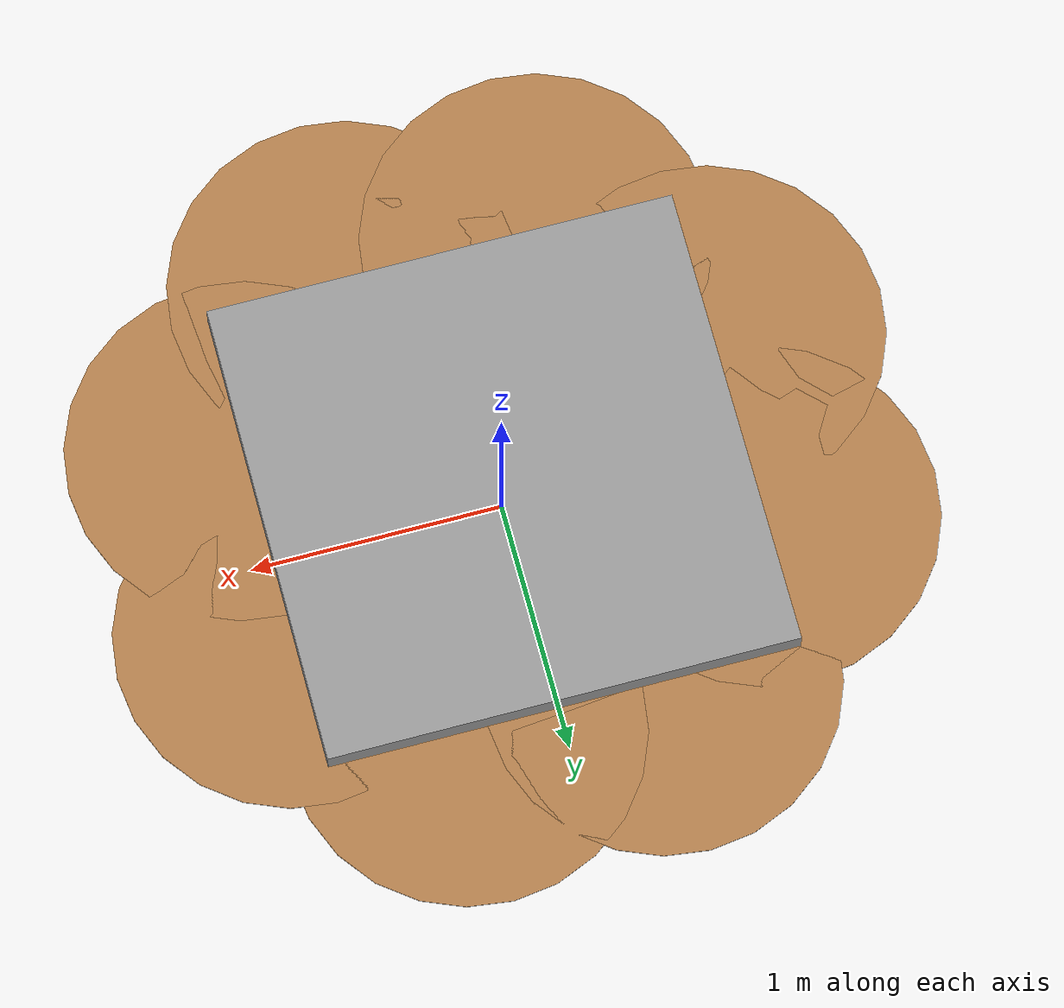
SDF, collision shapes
<sdf version='1.6'>
  <model name='DS030W'>
    <link name='base_link'>
      <pose frame=''>0 0 0 0 -0 0</pose>
      <inertial>
        <pose frame=''>0 0 0 0 -0 0</pose>
        <mass>28.784</mass>
        <inertia>
          <ixx>2.115</ixx>
          <ixy>0</ixy>
          <ixz>0</ixz>
          <iyy>2.074</iyy>
          <iyz>0</iyz>
          <izz>3.626</izz>
        </inertia>
      </inertial>
      <collision name='base_link_inertia_collision'>
        <pose frame=''>0 0 0 0 -0 0</pose>
        <geometry>
          <box>
            <size>1.85 1.85 0.815</size>
          </box>
        </geometry>
        <surface>
          <contact>
            <ode>
              <min_depth>0.001</min_depth>
              <max_vel>0</max_vel>
            </ode>
          </contact>
          <friction>
            <ode/>
          </friction>
        </surface>
      </collision>
      <visual name='base_link_inertia_visual'>
        <pose frame=''>0 0 0.3 0 -0 3.14159</pose>
        <geometry>
          <mesh>
            <scale>1 1 1</scale>
            <uri>model://rotors_description/meshes/DS030W_body.stl</uri>
          </mesh>
        </geometry>
        <material>
          <script>
            <name>Gazebo/Grey</name>
            <uri>file://media/materials/scripts/gazebo.material</uri>
          </script>
        </material>
      </visual>
      <gravity>1</gravity>
      <velocity_decay/>
    </link>
    <link name='/imu_link'>
      <pose frame=''>0 0 0 0 -0 0</pose>
      <inertial>
        <pose frame=''>0 0 0 0 -0 0</pose>
        <mass>0.015</mass>
        <inertia>
          <ixx>1e-05</ixx>
          <ixy>0</ixy>
          <ixz>0</ixz>
          <iyy>1e-05</iyy>
          <iyz>0</iyz>
          <izz>1e-05</izz>
        </inertia>
      </inertial>
    </link>
    <joint name='/imu_joint' type='revolute'>
      <child>/imu_link</child>
      <parent>base_link</parent>
      <axis>
        <xyz>1 0 0</xyz>
        <limit>
          <lower>0</lower>
          <upper>0</upper>
          <effort>0</effort>
          <velocity>0</velocity>
        </limit>
        <dynamics>
          <spring_reference>0</spring_reference>
          <spring_stiffness>0</spring_stiffness>
        </dynamics>
        <use_parent_model_frame>0</use_parent_model_frame>
      </axis>
    </joint>
    <link name='rotor_0'>
      <pose frame=''>0.923879 -0.382683 0.3 0 -0 0</pose>
      <inertial>
        <pose frame=''>0 0 0 0 -0 0</pose>
        <mass>0.065</mass>
        <inertia>
          <ixx>1.2675e-05</ixx>
          <ixy>0</ixy>
          <ixz>0</ixz>
          <iyy>0.101904</iyy>
          <iyz>0</iyz>
          <izz>0.101915</izz>
        </inertia>
      </inertial>
      <collision name='rotor_0_collision'>
        <pose frame=''>0 0 0 0 -0 0</pose>
        <geometry>
          <cylinder>
            <length>0.005</length>
            <radius>0.6858</radius>
          </cylinder>
        </geometry>
        <surface>
          <contact>
            <ode/>
          </contact>
          <friction>
            <ode/>
          </friction>
        </surface>
      </collision>
      <visual name='rotor_0_visual'>
        <pose frame=''>0 0 0 0 -0 0</pose>
        <geometry>
          <mesh>
            <scale>1 1 1</scale>
            <uri>model://rotors_description/meshes/DS030W_prop_cw.dae</uri>
          </mesh>
        </geometry>
        <material>
          <script>
            <name>Gazebo/Wood</name>
            <uri>file://media/materials/scripts/gazebo.material</uri>
          </script>
        </material>
      </visual>
      <gravity>1</gravity>
      <velocity_decay/>
    </link>
    <joint name='rotor_0_joint' type='revolute'>
      <child>rotor_0</child>
      <parent>base_link</parent>
      <axis>
        <xyz>0 0 1</xyz>
        <limit>
          <lower>-1e+16</lower>
          <upper>1e+16</upper>
        </limit>
        <dynamics>
          <spring_reference>0</spring_reference>
          <spring_stiffness>0</spring_stiffness>
        </dynamics>
        <use_parent_model_frame>0</use_parent_model_frame>
      </axis>
    </joint>
    <link name='rotor_1'>
      <pose frame=''>-0.923879 0.382683 0.3 0 -0 0</pose>
      <inertial>
        <pose frame=''>0 0 0 0 -0 0</pose>
        <mass>0.065</mass>
        <inertia>
          <ixx>1.2675e-05</ixx>
          <ixy>0</ixy>
          <ixz>0</ixz>
          <iyy>0.101904</iyy>
          <iyz>0</iyz>
          <izz>0.101915</izz>
        </inertia>
      </inertial>
      <collision name='rotor_1_collision'>
        <pose frame=''>0 0 0 0 -0 0</pose>
        <geometry>
          <cylinder>
            <length>0.005</length>
            <radius>0.6858</radius>
          </cylinder>
        </geometry>
        <surface>
          <contact>
            <ode/>
          </contact>
          <friction>
            <ode/>
          </friction>
        </surface>
      </collision>
      <visual name='rotor_1_visual'>
        <pose frame=''>0 0 0 0 -0 0</pose>
        <geometry>
          <mesh>
            <scale>1 1 1</scale>
            <uri>model://rotors_description/meshes/DS030W_prop_cw.dae</uri>
          </mesh>
        </geometry>
        <material>
          <script>
            <name>Gazebo/Wood</name>
            <uri>file://media/materials/scripts/gazebo.material</uri>
          </script>
        </material>
      </visual>
      <gravity>1</gravity>
      <velocity_decay/>
    </link>
    <joint name='rotor_1_joint' type='revolute'>
      <child>rotor_1</child>
      <parent>base_link</parent>
      <axis>
        <xyz>0 0 1</xyz>
        <limit>
          <lower>-1e+16</lower>
          <upper>1e+16</upper>
        </limit>
        <dynamics>
          <spring_reference>0</spring_reference>
          <spring_stiffness>0</spring_stiffness>
        </dynamics>
        <use_parent_model_frame>0</use_parent_model_frame>
      </axis>
    </joint>
    <link name='rotor_2'>
      <pose frame=''>0.382683 -0.923879 0.3 0 -0 0</pose>
      <inertial>
        <pose frame=''>0 0 0 0 -0 0</pose>
        <mass>0.065</mass>
        <inertia>
          <ixx>1.2675e-05</ixx>
          <ixy>0</ixy>
          <ixz>0</ixz>
          <iyy>0.101904</iyy>
          <iyz>0</iyz>
          <izz>0.101915</izz>
        </inertia>
      </inertial>
      <collision name='rotor_2_collision'>
        <pose frame=''>0 0 0 0 -0 0</pose>
        <geometry>
          <cylinder>
            <length>0.005</length>
            <radius>0.6858</radius>
          </cylinder>
        </geometry>
        <surface>
          <contact>
            <ode/>
          </contact>
          <friction>
            <ode/>
          </friction>
        </surface>
      </collision>
      <visual name='rotor_2_visual'>
        <pose frame=''>0 0 0 0 -0 0</pose>
        <geometry>
          <mesh>
            <scale>1 1 1</scale>
            <uri>model://rotors_description/meshes/DS030W_prop_ccw.dae</uri>
          </mesh>
        </geometry>
        <material>
          <script>
            <name>Gazebo/Wood</name>
            <uri>file://media/materials/scripts/gazebo.material</uri>
          </script>
        </material>
      </visual>
      <gravity>1</gravity>
      <velocity_decay/>
    </link>
    <joint name='rotor_2_joint' type='revolute'>
      <child>rotor_2</child>
      <parent>base_link</parent>
      <axis>
        <xyz>0 0 1</xyz>
        <limit>
          <lower>-1e+16</lower>
          <upper>1e+16</upper>
        </limit>
        <dynamics>
          <spring_reference>0</spring_reference>
          <spring_stiffness>0</spring_stiffness>
        </dynamics>
        <use_parent_model_frame>0</use_parent_model_frame>
      </axis>
    </joint>
    <link name='rotor_3'>
      <pose frame=''>-0.923879 -0.382683 0.3 0 -0 0</pose>
      <inertial>
        <pose frame=''>0 0 0 0 -0 0</pose>
        <mass>0.065</mass>
        <inertia>
          <ixx>1.2675e-05</ixx>
          <ixy>0</ixy>
          <ixz>0</ixz>
          <iyy>0.101904</iyy>
          <iyz>0</iyz>
          <izz>0.101915</izz>
        </inertia>
      </inertial>
      <collision name='rotor_3_collision'>
        <pose frame=''>0 0 0 0 -0 0</pose>
        <geometry>
          <cylinder>
            <length>0.005</length>
            <radius>0.6858</radius>
          </cylinder>
        </geometry>
        <surface>
          <contact>
            <ode/>
          </contact>
          <friction>
            <ode/>
          </friction>
        </surface>
      </collision>
      <visual name='rotor_3_visual'>
        <pose frame=''>0 0 0 0 -0 0</pose>
        <geometry>
          <mesh>
            <scale>1 1 1</scale>
            <uri>model://rotors_description/meshes/DS030W_prop_ccw.dae</uri>
          </mesh>
        </geometry>
        <material>
          <script>
            <name>Gazebo/Wood</name>
            <uri>file://media/materials/scripts/gazebo.material</uri>
          </script>
        </material>
      </visual>
      <gravity>1</gravity>
      <velocity_decay/>
    </link>
    <joint name='rotor_3_joint' type='revolute'>
      <child>rotor_3</child>
      <parent>base_link</parent>
      <axis>
        <xyz>0 0 1</xyz>
        <limit>
          <lower>-1e+16</lower>
          <upper>1e+16</upper>
        </limit>
        <dynamics>
          <spring_reference>0</spring_reference>
          <spring_stiffness>0</spring_stiffness>
        </dynamics>
        <use_parent_model_frame>0</use_parent_model_frame>
      </axis>
    </joint>
    <link name='rotor_4'>
      <pose frame=''>0.923879 0.382683 0.3 0 -0 0</pose>
      <inertial>
        <pose frame=''>0 0 0 0 -0 0</pose>
        <mass>0.065</mass>
        <inertia>
          <ixx>1.2675e-05</ixx>
          <ixy>0</ixy>
          <ixz>0</ixz>
          <iyy>0.101904</iyy>
          <iyz>0</iyz>
          <izz>0.101915</izz>
        </inertia>
      </inertial>
      <collision name='rotor_4_collision'>
        <pose frame=''>0 0 0 0 -0 0</pose>
        <geometry>
          <cylinder>
            <length>0.005</length>
            <radius>0.6858</radius>
          </cylinder>
        </geometry>
        <surface>
          <contact>
            <ode/>
          </contact>
          <friction>
            <ode/>
          </friction>
        </surface>
      </collision>
      <visual name='rotor_4_visual'>
        <pose frame=''>0 0 0 0 -0 0</pose>
        <geometry>
          <mesh>
            <scale>1 1 1</scale>
            <uri>model://rotors_description/meshes/DS030W_prop_ccw.dae</uri>
          </mesh>
        </geometry>
        <material>
          <script>
            <name>Gazebo/Wood</name>
            <uri>file://media/materials/scripts/gazebo.material</uri>
          </script>
        </material>
      </visual>
      <gravity>1</gravity>
      <velocity_decay/>
    </link>
    <joint name='rotor_4_joint' type='revolute'>
      <child>rotor_4</child>
      <parent>base_link</parent>
      <axis>
        <xyz>0 0 1</xyz>
        <limit>
          <lower>-1e+16</lower>
          <upper>1e+16</upper>
        </limit>
        <dynamics>
          <spring_reference>0</spring_reference>
          <spring_stiffness>0</spring_stiffness>
        </dynamics>
        <use_parent_model_frame>0</use_parent_model_frame>
      </axis>
    </joint>
    <link name='rotor_5'>
      <pose frame=''>-0.382683 0.923879 0.3 0 -0 0</pose>
      <inertial>
        <pose frame=''>0 0 0 0 -0 0</pose>
        <mass>0.065</mass>
        <inertia>
          <ixx>1.2675e-05</ixx>
          <ixy>0</ixy>
          <ixz>0</ixz>
          <iyy>0.101904</iyy>
          <iyz>0</iyz>
          <izz>0.101915</izz>
        </inertia>
      </inertial>
      <collision name='rotor_5_collision'>
        <pose frame=''>0 0 0 0 -0 0</pose>
        <geometry>
          <cylinder>
            <length>0.005</length>
            <radius>0.6858</radius>
          </cylinder>
        </geometry>
        <surface>
          <contact>
            <ode/>
          </contact>
          <friction>
            <ode/>
          </friction>
        </surface>
      </collision>
      <visual name='rotor_5_visual'>
        <pose frame=''>0 0 0 0 -0 0</pose>
        <geometry>
          <mesh>
            <scale>1 1 1</scale>
            <uri>model://rotors_description/meshes/DS030W_prop_ccw.dae</uri>
          </mesh>
        </geometry>
        <material>
          <script>
            <name>Gazebo/Wood</name>
            <uri>file://media/materials/scripts/gazebo.material</uri>
          </script>
        </material>
      </visual>
      <gravity>1</gravity>
      <velocity_decay/>
    </link>
    <joint name='rotor_5_joint' type='revolute'>
      <child>rotor_5</child>
      <parent>base_link</parent>
      <axis>
        <xyz>0 0 1</xyz>
        <limit>
          <lower>-1e+16</lower>
          <upper>1e+16</upper>
        </limit>
        <dynamics>
          <spring_reference>0</spring_reference>
          <spring_stiffness>0</spring_stiffness>
        </dynamics>
        <use_parent_model_frame>0</use_parent_model_frame>
      </axis>
    </joint>
    <link name='rotor_6'>
      <pose frame=''>0.382683 0.923879 0.3 0 -0 0</pose>
      <inertial>
        <pose frame=''>0 0 0 0 -0 0</pose>
        <mass>0.065</mass>
        <inertia>
          <ixx>1.2675e-05</ixx>
          <ixy>0</ixy>
          <ixz>0</ixz>
          <iyy>0.101904</iyy>
          <iyz>0</iyz>
          <izz>0.101915</izz>
        </inertia>
      </inertial>
      <collision name='rotor_6_collision'>
        <pose frame=''>0 0 0 0 -0 0</pose>
        <geometry>
          <cylinder>
            <length>0.005</length>
            <radius>0.6858</radius>
          </cylinder>
        </geometry>
        <surface>
          <contact>
            <ode/>
          </contact>
          <friction>
            <ode/>
          </friction>
        </surface>
      </collision>
      <visual name='rotor_6_visual'>
        <pose frame=''>0 0 0 0 -0 0</pose>
        <geometry>
          <mesh>
            <scale>1 1 1</scale>
            <uri>model://rotors_description/meshes/DS030W_prop_cw.dae</uri>
          </mesh>
        </geometry>
        <material>
          <script>
            <name>Gazebo/Wood</name>
            <uri>file://media/materials/scripts/gazebo.material</uri>
          </script>
        </material>
      </visual>
      <gravity>1</gravity>
      <velocity_decay/>
    </link>
    <joint name='rotor_6_joint' type='revolute'>
      <child>rotor_6</child>
      <parent>base_link</parent>
      <axis>
        <xyz>0 0 1</xyz>
        <limit>
          <lower>-1e+16</lower>
          <upper>1e+16</upper>
        </limit>
        <dynamics>
          <spring_reference>0</spring_reference>
          <spring_stiffness>0</spring_stiffness>
        </dynamics>
        <use_parent_model_frame>0</use_parent_model_frame>
      </axis>
    </joint>
    <link name='rotor_7'>
      <pose frame=''>-0.382683 -0.923879 0.3 0 -0 0</pose>
      <inertial>
        <pose frame=''>0 0 0 0 -0 0</pose>
        <mass>0.065</mass>
        <inertia>
          <ixx>1.2675e-05</ixx>
          <ixy>0</ixy>
          <ixz>0</ixz>
          <iyy>0.101904</iyy>
          <iyz>0</iyz>
          <izz>0.101915</izz>
        </inertia>
      </inertial>
      <collision name='rotor_7_collision'>
        <pose frame=''>0 0 0 0 -0 0</pose>
        <geometry>
          <cylinder>
            <length>0.005</length>
            <radius>0.6858</radius>
          </cylinder>
        </geometry>
        <surface>
          <contact>
            <ode/>
          </contact>
          <friction>
            <ode/>
          </friction>
        </surface>
      </collision>
      <visual name='rotor_7_visual'>
        <pose frame=''>0 0 0 0 -0 0</pose>
        <geometry>
          <mesh>
            <scale>1 1 1</scale>
            <uri>model://rotors_description/meshes/DS030W_prop_cw.dae</uri>
          </mesh>
        </geometry>
        <material>
          <script>
            <name>Gazebo/Wood</name>
            <uri>file://media/materials/scripts/gazebo.material</uri>
          </script>
        </material>
      </visual>
      <gravity>1</gravity>
      <velocity_decay/>
    </link>
    <joint name='rotor_7_joint' type='revolute'>
      <child>rotor_7</child>
      <parent>base_link</parent>
      <axis>
        <xyz>0 0 1</xyz>
        <limit>
          <lower>-1e+16</lower>
          <upper>1e+16</upper>
        </limit>
        <dynamics>
          <spring_reference>0</spring_reference>
          <spring_stiffness>0</spring_stiffness>
        </dynamics>
        <use_parent_model_frame>0</use_parent_model_frame>
      </axis>
    </joint>
    <plugin name='rosbag' filename='libgazebo_multirotor_base_plugin.so'>
      <robotNamespace/>
      <linkName>base_link</linkName>
      <rotorVelocitySlowdownSim>10</rotorVelocitySlowdownSim>
    </plugin>
    <plugin name='front_right_motor_model' filename='libgazebo_motor_model.so'>
      <robotNamespace/>
      <jointName>rotor_0_joint</jointName>
      <linkName>rotor_0</linkName>
      <turningDirection>cw</turningDirection>
      <timeConstantUp>0.0125</timeConstantUp>
      <timeConstantDown>0.025</timeConstantDown>
      <maxRotVelocity>395</maxRotVelocity>
      <motorConstant>0.0005334</motorConstant>
      <momentConstant>0.095492</momentConstant>
      <commandSubTopic>/gazebo/command/motor_speed</commandSubTopic>
      <motorNumber>0</motorNumber>
      <rotorDragCoefficient>0.00072642</rotorDragCoefficient>
      <rollingMomentCoefficient>1e-06</rollingMomentCoefficient>
      <motorSpeedPubTopic>/motor_speed/0</motorSpeedPubTopic>
      <rotorVelocitySlowdownSim>10</rotorVelocitySlowdownSim>
    </plugin>
    <plugin name='rear_left_motor_model' filename='libgazebo_motor_model.so'>
      <robotNamespace/>
      <jointName>rotor_1_joint</jointName>
      <linkName>rotor_1</linkName>
      <turningDirection>cw</turningDirection>
      <timeConstantUp>0.0125</timeConstantUp>
      <timeConstantDown>0.025</timeConstantDown>
      <maxRotVelocity>395</maxRotVelocity>
      <motorConstant>0.0005334</motorConstant>
      <momentConstant>0.095492</momentConstant>
      <commandSubTopic>/gazebo/command/motor_speed</commandSubTopic>
      <motorNumber>1</motorNumber>
      <rotorDragCoefficient>0.00072642</rotorDragCoefficient>
      <rollingMomentCoefficient>1e-06</rollingMomentCoefficient>
      <motorSpeedPubTopic>/motor_speed/1</motorSpeedPubTopic>
      <rotorVelocitySlowdownSim>10</rotorVelocitySlowdownSim>
    </plugin>
    <plugin name='mid_front_right_motor_model' filename='libgazebo_motor_model.so'>
      <robotNamespace/>
      <jointName>rotor_2_joint</jointName>
      <linkName>rotor_2</linkName>
      <turningDirection>ccw</turningDirection>
      <timeConstantUp>0.0125</timeConstantUp>
      <timeConstantDown>0.025</timeConstantDown>
      <maxRotVelocity>395</maxRotVelocity>
      <motorConstant>0.0005334</motorConstant>
      <momentConstant>0.095492</momentConstant>
      <commandSubTopic>/gazebo/command/motor_speed</commandSubTopic>
      <motorNumber>2</motorNumber>
      <rotorDragCoefficient>0.00072642</rotorDragCoefficient>
      <rollingMomentCoefficient>1e-06</rollingMomentCoefficient>
      <motorSpeedPubTopic>/motor_speed/2</motorSpeedPubTopic>
      <rotorVelocitySlowdownSim>10</rotorVelocitySlowdownSim>
    </plugin>
    <plugin name='rear_right_motor_model' filename='libgazebo_motor_model.so'>
      <robotNamespace/>
      <jointName>rotor_3_joint</jointName>
      <linkName>rotor_3</linkName>
      <turningDirection>ccw</turningDirection>
      <timeConstantUp>0.0125</timeConstantUp>
      <timeConstantDown>0.025</timeConstantDown>
      <maxRotVelocity>395</maxRotVelocity>
      <motorConstant>0.0005334</motorConstant>
      <momentConstant>0.095492</momentConstant>
      <commandSubTopic>/gazebo/command/motor_speed</commandSubTopic>
      <motorNumber>3</motorNumber>
      <rotorDragCoefficient>0.00072642</rotorDragCoefficient>
      <rollingMomentCoefficient>1e-06</rollingMomentCoefficient>
      <motorSpeedPubTopic>/motor_speed/3</motorSpeedPubTopic>
      <rotorVelocitySlowdownSim>10</rotorVelocitySlowdownSim>
    </plugin>
    <plugin name='front_left_motor_model' filename='libgazebo_motor_model.so'>
      <robotNamespace/>
      <jointName>rotor_4_joint</jointName>
      <linkName>rotor_4</linkName>
      <turningDirection>ccw</turningDirection>
      <timeConstantUp>0.0125</timeConstantUp>
      <timeConstantDown>0.025</timeConstantDown>
      <maxRotVelocity>395</maxRotVelocity>
      <motorConstant>0.0005334</motorConstant>
      <momentConstant>0.095492</momentConstant>
      <commandSubTopic>/gazebo/command/motor_speed</commandSubTopic>
      <motorNumber>4</motorNumber>
      <rotorDragCoefficient>0.00072642</rotorDragCoefficient>
      <rollingMomentCoefficient>1e-06</rollingMomentCoefficient>
      <motorSpeedPubTopic>/motor_speed/4</motorSpeedPubTopic>
      <rotorVelocitySlowdownSim>10</rotorVelocitySlowdownSim>
    </plugin>
    <plugin name='mid_rear_left_motor_model' filename='libgazebo_motor_model.so'>
      <robotNamespace/>
      <jointName>rotor_5_joint</jointName>
      <linkName>rotor_5</linkName>
      <turningDirection>ccw</turningDirection>
      <timeConstantUp>0.0125</timeConstantUp>
      <timeConstantDown>0.025</timeConstantDown>
      <maxRotVelocity>395</maxRotVelocity>
      <motorConstant>0.0005334</motorConstant>
      <momentConstant>0.095492</momentConstant>
      <commandSubTopic>/gazebo/command/motor_speed</commandSubTopic>
      <motorNumber>5</motorNumber>
      <rotorDragCoefficient>0.00072642</rotorDragCoefficient>
      <rollingMomentCoefficient>1e-06</rollingMomentCoefficient>
      <motorSpeedPubTopic>/motor_speed/5</motorSpeedPubTopic>
      <rotorVelocitySlowdownSim>10</rotorVelocitySlowdownSim>
    </plugin>
    <plugin name='mid_front_left_motor_model' filename='libgazebo_motor_model.so'>
      <robotNamespace/>
      <jointName>rotor_6_joint</jointName>
      <linkName>rotor_6</linkName>
      <turningDirection>cw</turningDirection>
      <timeConstantUp>0.0125</timeConstantUp>
      <timeConstantDown>0.025</timeConstantDown>
      <maxRotVelocity>395</maxRotVelocity>
      <motorConstant>0.0005334</motorConstant>
      <momentConstant>0.095492</momentConstant>
      <commandSubTopic>/gazebo/command/motor_speed</commandSubTopic>
      <motorNumber>6</motorNumber>
      <rotorDragCoefficient>0.00072642</rotorDragCoefficient>
      <rollingMomentCoefficient>1e-06</rollingMomentCoefficient>
      <motorSpeedPubTopic>/motor_speed/6</motorSpeedPubTopic>
      <rotorVelocitySlowdownSim>10</rotorVelocitySlowdownSim>
    </plugin>
    <plugin name='mid_rear_right_motor_model' filename='libgazebo_motor_model.so'>
      <robotNamespace/>
      <jointName>rotor_7_joint</jointName>
      <linkName>rotor_7</linkName>
      <turningDirection>cw</turningDirection>
      <timeConstantUp>0.0125</timeConstantUp>
      <timeConstantDown>0.025</timeConstantDown>
      <maxRotVelocity>395</maxRotVelocity>
      <motorConstant>0.0005334</motorConstant>
      <momentConstant>0.095492</momentConstant>
      <commandSubTopic>/gazebo/command/motor_speed</commandSubTopic>
      <motorNumber>7</motorNumber>
      <rotorDragCoefficient>0.00072642</rotorDragCoefficient>
      <rollingMomentCoefficient>1e-06</rollingMomentCoefficient>
      <motorSpeedPubTopic>/motor_speed/7</motorSpeedPubTopic>
      <rotorVelocitySlowdownSim>10</rotorVelocitySlowdownSim>
    </plugin>
    <model name='gps0'>
      <link name='link'>
        <pose frame=''>0 0 0 0 -0 0</pose>
        <inertial>
          <pose frame=''>0 0 0 0 -0 0</pose>
          <mass>0.01</mass>
          <inertia>
            <ixx>2.1733e-06</ixx>
            <ixy>0</ixy>
            <ixz>0</ixz>
            <iyy>2.1733e-06</iyy>
            <iyz>0</iyz>
            <izz>1.8e-07</izz>
          </inertia>
        </inertial>
        <visual name='visual'>
          <geometry>
            <cylinder>
              <radius>0.01</radius>
              <length>0.002</length>
            </cylinder>
          </geometry>
          <material>
            <script>
              <name>Gazebo/Black</name>
              <uri>__default__</uri>
            </script>
          </material>
        </visual>
        <sensor name='gps' type='gps'>
          <pose frame=''>0 0 0 0 -0 0</pose>
          <plugin name='gps_plugin' filename='libgazebo_gps_plugin.so'>
            <robotNamespace/>
            <gpsNoise>1</gpsNoise>
            <gpsXYRandomWalk>2.0</gpsXYRandomWalk>
            <gpsZRandomWalk>4.0</gpsZRandomWalk>
            <gpsXYNoiseDensity>0.0002</gpsXYNoiseDensity>
            <gpsZNoiseDensity>0.0004</gpsZNoiseDensity>
            <gpsVXYNoiseDensity>0.2</gpsVXYNoiseDensity>
            <gpsVZNoiseDensity>0.4</gpsVZNoiseDensity>
          </plugin>
        </sensor>
      </link>
    </model>
    <joint name='gps0_joint' type='fixed'>
      <parent>base_link</parent>
      <child>gps0::link</child>
    </joint>
    <plugin name='groundtruth_plugin' filename='libgazebo_groundtruth_plugin.so'>
      <robotNamespace/>
    </plugin>
    <plugin name='magnetometer_plugin' filename='libgazebo_magnetometer_plugin.so'>
      <robotNamespace/>
      <pubRate>100</pubRate>
      <noiseDensity>0.0004</noiseDensity>
      <randomWalk>6.4e-06</randomWalk>
      <biasCorrelationTime>600</biasCorrelationTime>
      <magTopic>/mag</magTopic>
    </plugin>
    <plugin name='barometer_plugin' filename='libgazebo_barometer_plugin.so'>
      <robotNamespace/>
      <pubRate>50</pubRate>
      <baroTopic>/baro</baroTopic>
      <baroDriftPaPerSec>0</baroDriftPaPerSec>
    </plugin>
    <plugin name='mavlink_interface' filename='libgazebo_mavlink_interface.so'>
      <robotNamespace/>
      <imuSubTopic>/imu</imuSubTopic>
      <magSubTopic>/mag</magSubTopic>
      <baroSubTopic>/baro</baroSubTopic>
      <mavlink_addr>INADDR_ANY</mavlink_addr>
      <mavlink_udp_port>14560</mavlink_udp_port>
      <mavlink_tcp_port>4560</mavlink_tcp_port>
      <serialEnabled>0</serialEnabled>
      <serialDevice>/dev/ttyACM0</serialDevice>
      <baudRate>921600</baudRate>
      <qgc_addr>INADDR_ANY</qgc_addr>
      <qgc_udp_port>14550</qgc_udp_port>
      <sdk_addr>INADDR_ANY</sdk_addr>
      <sdk_udp_port>14540</sdk_udp_port>
      <hil_mode>0</hil_mode>
      <hil_state_level>0</hil_state_level>
      <vehicle_is_tailsitter>0</vehicle_is_tailsitter>
      <send_vision_estimation>0</send_vision_estimation>
      <send_odometry>1</send_odometry>
      <enable_lockstep>1</enable_lockstep>
      <use_tcp>1</use_tcp>
      <motorSpeedCommandPubTopic>/gazebo/command/motor_speed</motorSpeedCommandPubTopic>
      <control_channels>
        <channel name='rotor1'>
          <input_index>0</input_index>
          <input_offset>0</input_offset>
          <input_scaling>1000</input_scaling>
          <zero_position_disarmed>0</zero_position_disarmed>
          <zero_position_armed>100</zero_position_armed>
          <joint_control_type>velocity</joint_control_type>
        </channel>
        <channel name='rotor2'>
          <input_index>1</input_index>
          <input_offset>0</input_offset>
          <input_scaling>1000</input_scaling>
          <zero_position_disarmed>0</zero_position_disarmed>
          <zero_position_armed>100</zero_position_armed>
          <joint_control_type>velocity</joint_control_type>
        </channel>
        <channel name='rotor3'>
          <input_index>2</input_index>
          <input_offset>0</input_offset>
          <input_scaling>1000</input_scaling>
          <zero_position_disarmed>0</zero_position_disarmed>
          <zero_position_armed>100</zero_position_armed>
          <joint_control_type>velocity</joint_control_type>
        </channel>
        <channel name='rotor4'>
          <input_index>3</input_index>
          <input_offset>0</input_offset>
          <input_scaling>1000</input_scaling>
          <zero_position_disarmed>0</zero_position_disarmed>
          <zero_position_armed>100</zero_position_armed>
          <joint_control_type>velocity</joint_control_type>
        </channel>
        <channel name='rotor5'>
          <input_index>4</input_index>
          <input_offset>0</input_offset>
          <input_scaling>1000</input_scaling>
          <zero_position_disarmed>0</zero_position_disarmed>
          <zero_position_armed>100</zero_position_armed>
          <joint_control_type>velocity</joint_control_type>
        </channel>
        <channel name='rotor6'>
          <input_index>5</input_index>
          <input_offset>0</input_offset>
          <input_scaling>1000</input_scaling>
          <zero_position_disarmed>0</zero_position_disarmed>
          <zero_position_armed>100</zero_position_armed>
          <joint_control_type>velocity</joint_control_type>
        </channel>
        <channel name='rotor7'>
          <input_index>6</input_index>
          <input_offset>0</input_offset>
          <input_scaling>1000</input_scaling>
          <zero_position_disarmed>0</zero_position_disarmed>
          <zero_position_armed>100</zero_position_armed>
          <joint_control_type>velocity</joint_control_type>
        </channel>
        <channel name='rotor8'>
          <input_index>7</input_index>
          <input_offset>0</input_offset>
          <input_scaling>1000</input_scaling>
          <zero_position_disarmed>0</zero_position_disarmed>
          <zero_position_armed>100</zero_position_armed>
          <joint_control_type>velocity</joint_control_type>
        </channel>
      </control_channels>
    </plugin>
    <static>0</static>
    <plugin name='rotors_gazebo_imu_plugin' filename='libgazebo_imu_plugin.so'>
      <robotNamespace/>
      <linkName>/imu_link</linkName>
      <imuTopic>/imu</imuTopic>
      <gyroscopeNoiseDensity>0.00018665</gyroscopeNoiseDensity>
      <gyroscopeRandomWalk>3.8785e-05</gyroscopeRandomWalk>
      <gyroscopeBiasCorrelationTime>1000.0</gyroscopeBiasCorrelationTime>
      <gyroscopeTurnOnBiasSigma>0.0087</gyroscopeTurnOnBiasSigma>
      <accelerometerNoiseDensity>0.00186</accelerometerNoiseDensity>
      <accelerometerRandomWalk>0.006</accelerometerRandomWalk>
      <accelerometerBiasCorrelationTime>300.0</accelerometerBiasCorrelationTime>
      <accelerometerTurnOnBiasSigma>0.196</accelerometerTurnOnBiasSigma>
    </plugin>
  </model>
</sdf>
